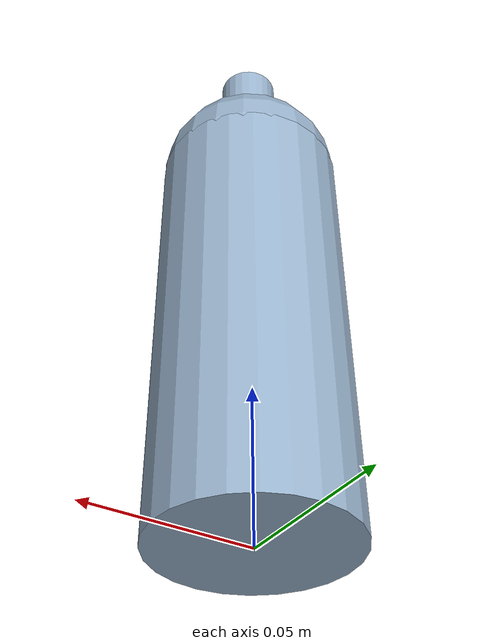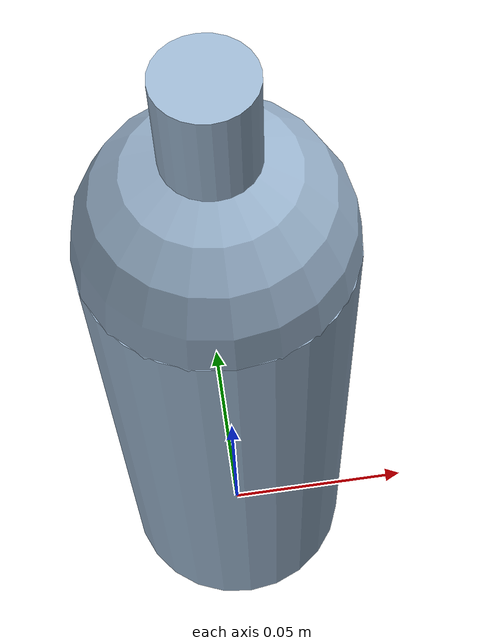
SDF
<?xml version="1.0"?>
<sdf version="1.7">
  <model name="bottle">
    <link name="bottle_base_link">
      <inertial>
        <pose>0 0 0.03 0 0 0 </pose>
        <mass>0.5</mass> <!-- half liter of water -->
        <!-- calculated using moment of inertia for uniform cylinder -->
        <inertia>
          <ixx>0.00105</ixx>
          <ixy>0</ixy>
          <ixz>0</ixz>
          <iyy>0.00105</iyy>
          <iyz>0</iyz>
          <izz>0.000225</izz>
        </inertia>
      </inertial>

      <visual name="spout_visual">
        <pose>0 0 0.17 0 0 0</pose>
        <geometry>
          <cylinder>
            <radius>0.01</radius>
            <length>0.04</length>
          </cylinder>
        </geometry>
        <material>
          <diffuse>0.6 0.7 0.8 1.0</diffuse>
        </material>
      </visual>

      <visual name="neck_visual">
        <pose>0 0 0.14 0 0 0</pose>
        <geometry>
          <sphere>
            <radius>0.03</radius>
          </sphere>
        </geometry>
        <material>
          <diffuse>0.6 0.7 0.8 1.0</diffuse>
        </material>
      </visual>

      <visual name="cylinder_visual">
        <pose>0 0 0.07 0 0 0</pose>
        <geometry>
          <cylinder>
            <radius>0.03</radius>
            <length>0.14</length>
          </cylinder>
        </geometry>
        <material>
          <diffuse>0.6 0.7 0.8 1.0</diffuse>
        </material>
      </visual>

      <collision name="spout_collision">
        <pose>0 0 0.17 0 0 0</pose>
        <geometry>
          <cylinder>
            <radius>0.01</radius>
            <length>0.04</length>
          </cylinder>
        </geometry>
      </collision>

      <collision name="neck_collision">
        <pose>0 0 0.14 0 0 0</pose>
        <geometry>
          <sphere>
            <radius>0.03</radius>
          </sphere>
        </geometry>
      </collision>

      <collision name="cylinder_collision">
        <pose>0 0 0.07 0 0 0</pose>
        <geometry>
          <cylinder>
            <radius>0.03</radius>
            <length>0.14</length>
          </cylinder>
        </geometry>
      </collision>

    </link>
  </model>
</sdf>
